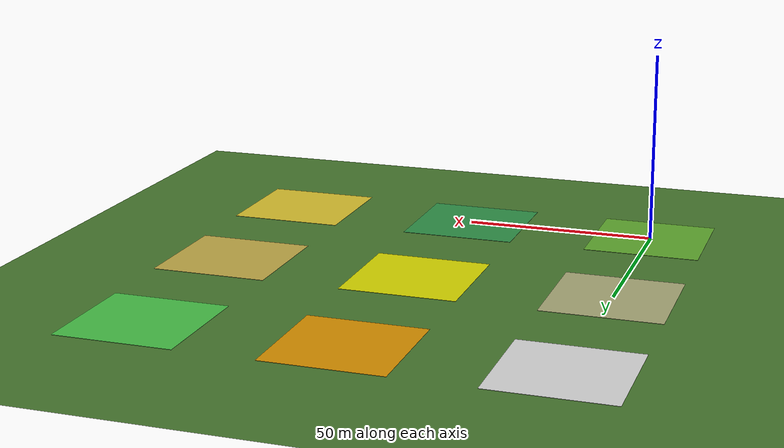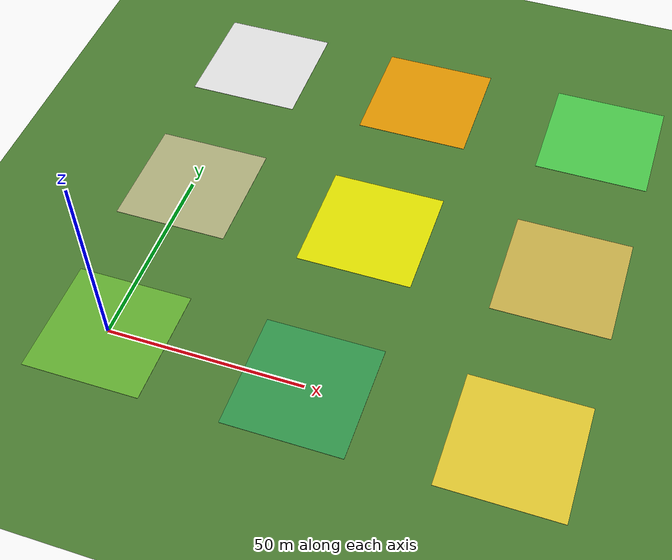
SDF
<sdf version="1.9">
 <world name="multi_field_farm_world">
  <physics name="1ms" type="ignore">
   <max_step_size>0.001</max_step_size>
   <real_time_factor>1.0</real_time_factor>
  </physics>
  <plugin filename="gz-sim-physics-system" name="gz::sim::systems::Physics"/>
  <plugin filename="gz-sim-sensors-system" name="gz::sim::systems::Sensors">
   <render_engine>ogre2</render_engine>
  </plugin>
  <plugin filename="gz-sim-user-commands-system" name="gz::sim::systems::UserCommands"/>
  <plugin filename="gz-sim-scene-broadcaster-system" name="gz::sim::systems::SceneBroadcaster"/>
  <plugin filename="gz-sim-imu-system" name="gz::sim::systems::Imu"/>
  <plugin filename="gz-sim-navsat-system" name="gz::sim::systems::NavSat"/>
  <scene><ambient>0.6 0.8 0.4</ambient><background>0.7 0.9 1.0</background></scene>
  <spherical_coordinates>
   <latitude_deg>-35.363262</latitude_deg>
   <longitude_deg>149.165237</longitude_deg>
   <elevation>584</elevation>
   <heading_deg>0</heading_deg>
   <surface_model>EARTH_WGS84</surface_model>
  </spherical_coordinates>
  <light type="directional" name="sun">
   <pose>0 0 10 0 0 0</pose>
   <diffuse>0.9 0.9 0.7 1</diffuse>
   <specular>0.8 0.8 0.8 1</specular>
   <attenuation>
    <range>1000</range>
    <constant>0.9</constant>
    <linear>0.01</linear>
    <quadratic>0.001</quadratic>
   </attenuation>
   <direction>-0.5 0.1 -0.9</direction>
  </light>
  <model name="ground_plane">
   <static>true</static>
   <link name="link">
    <collision name="collision">
     <geometry><plane><normal>0 0 1</normal><size>2000 2000</size></plane></geometry>
     <surface><friction><ode><mu>100</mu><mu2>50</mu2></ode></friction></surface>
    </collision>
    <visual name="visual">
     <geometry><plane><normal>0 0 1</normal><size>2000 2000</size></plane></geometry>
     <material>
      <ambient>0.3 0.5 0.2 1</ambient>
      <diffuse>0.3 0.5 0.2 1</diffuse>
      <specular>0.1 0.1 0.1 1</specular>
     </material>
    </visual>
   </link>
  </model>
  <model name="field_1">
   <static>true</static>
   <pose>0 0 0.05 0 0 0</pose>
   <link name="link">
    <collision name="collision"><geometry><box><size>30 30 0.1</size></box></geometry></collision>
    <visual name="visual">
     <geometry><box><size>30 30 0.1</size></box></geometry>
     <material>
      <ambient>0.4 0.7 0.2 1</ambient>
      <diffuse>0.4 0.7 0.2 1</diffuse>
      <specular>0.1 0.1 0.1 1</specular>
     </material>
    </visual>
   </link>
  </model>
  <model name="field_2">
   <static>true</static>
   <pose>50 0 0.05 0 0 0</pose>
   <link name="link">
    <collision name="collision"><geometry><box><size>30 30 0.1</size></box></geometry></collision>
    <visual name="visual">
     <geometry><box><size>30 30 0.1</size></box></geometry>
     <material>
      <ambient>0.2 0.6 0.3 1</ambient>
      <diffuse>0.2 0.6 0.3 1</diffuse>
      <specular>0.1 0.1 0.1 1</specular>
     </material>
    </visual>
   </link>
  </model>
  <model name="field_3">
   <static>true</static>
   <pose>100 0 0.05 0 0 0</pose>
   <link name="link">
    <collision name="collision"><geometry><box><size>30 30 0.1</size></box></geometry></collision>
    <visual name="visual">
     <geometry><box><size>30 30 0.1</size></box></geometry>
     <material>
      <ambient>0.9 0.8 0.2 1</ambient>
      <diffuse>0.9 0.8 0.2 1</diffuse>
      <specular>0.1 0.1 0.1 1</specular>
     </material>
    </visual>
   </link>
  </model>
  <model name="field_4">
   <static>true</static>
   <pose>0 50 0.05 0 0 0</pose>
   <link name="link">
    <collision name="collision"><geometry><box><size>30 30 0.1</size></box></geometry></collision>
    <visual name="visual">
     <geometry><box><size>30 30 0.1</size></box></geometry>
     <material>
      <ambient>0.7 0.7 0.5 1</ambient>
      <diffuse>0.7 0.7 0.5 1</diffuse>
      <specular>0.1 0.1 0.1 1</specular>
     </material>
    </visual>
   </link>
  </model>
  <model name="field_5">
   <static>true</static>
   <pose>50 50 0.05 0 0 0</pose>
   <link name="link">
    <collision name="collision"><geometry><box><size>30 30 0.1</size></box></geometry></collision>
    <visual name="visual">
     <geometry><box><size>30 30 0.1</size></box></geometry>
     <material>
      <ambient>0.9 0.9 0.0 1</ambient>
      <diffuse>0.9 0.9 0.0 1</diffuse>
      <specular>0.1 0.1 0.1 1</specular>
     </material>
    </visual>
   </link>
  </model>
  <model name="field_6">
   <static>true</static>
   <pose>100 50 0.05 0 0 0</pose>
   <link name="link">
    <collision name="collision"><geometry><box><size>30 30 0.1</size></box></geometry></collision>
    <visual name="visual">
     <geometry><box><size>30 30 0.1</size></box></geometry>
     <material>
      <ambient>0.8 0.7 0.3 1</ambient>
      <diffuse>0.8 0.7 0.3 1</diffuse>
      <specular>0.1 0.1 0.1 1</specular>
     </material>
    </visual>
   </link>
  </model>
  <model name="field_7">
   <static>true</static>
   <pose>0 100 0.05 0 0 0</pose>
   <link name="link">
    <collision name="collision"><geometry><box><size>30 30 0.1</size></box></geometry></collision>
    <visual name="visual">
     <geometry><box><size>30 30 0.1</size></box></geometry>
     <material>
      <ambient>0.9 0.9 0.9 1</ambient>
      <diffuse>0.9 0.9 0.9 1</diffuse>
      <specular>0.1 0.1 0.1 1</specular>
     </material>
    </visual>
   </link>
  </model>
  <model name="field_8">
   <static>true</static>
   <pose>50 100 0.05 0 0 0</pose>
   <link name="link">
    <collision name="collision"><geometry><box><size>30 30 0.1</size></box></geometry></collision>
    <visual name="visual">
     <geometry><box><size>30 30 0.1</size></box></geometry>
     <material>
      <ambient>0.9 0.6 0.0 1</ambient>
      <diffuse>0.9 0.6 0.0 1</diffuse>
      <specular>0.1 0.1 0.1 1</specular>
     </material>
    </visual>
   </link>
  </model>
  <model name="field_9">
   <static>true</static>
   <pose>100 100 0.05 0 0 0</pose>
   <link name="link">
    <collision name="collision"><geometry><box><size>30 30 0.1</size></box></geometry></collision>
    <visual name="visual">
     <geometry><box><size>30 30 0.1</size></box></geometry>
     <material>
      <ambient>0.3 0.8 0.3 1</ambient>
      <diffuse>0.3 0.8 0.3 1</diffuse>
      <specular>0.1 0.1 0.1 1</specular>
     </material>
    </visual>
   </link>
  </model>
 </world>
</sdf>
